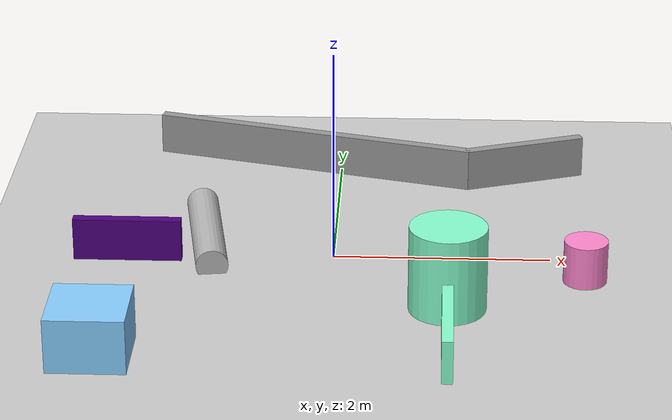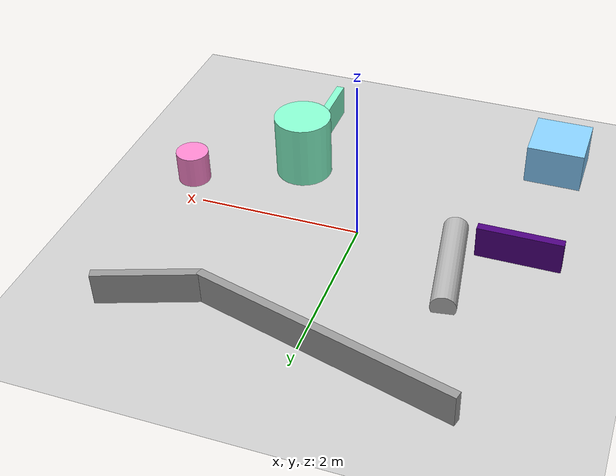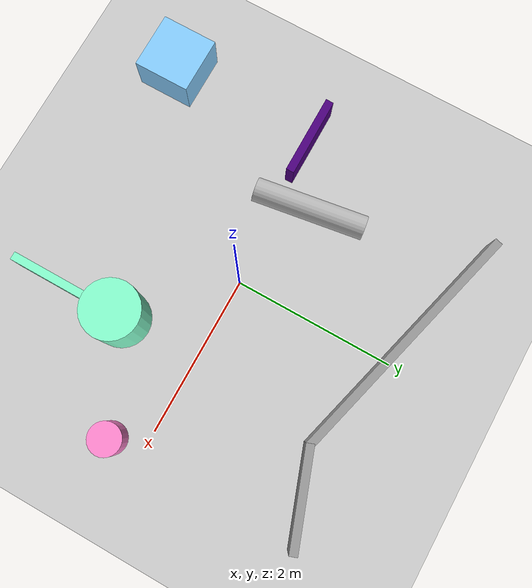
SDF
<sdf version="1.8">
 <world name="dqn">
  <plugin filename="gz-sim-physics-system" name="gz::sim::systems::Physics"/>
  <plugin filename="gz-sim-user-commands-system" name="gz::sim::systems::UserCommands"/>
  <plugin filename="gz-sim-scene-broadcaster-system" name="gz::sim::systems::SceneBroadcaster"/>
  <plugin filename="gz-sim-sensors-system" name="gz::sim::systems::Sensors">
   <render_engine>ogre2</render_engine>
  </plugin>
  <physics type="ode">
   <real_time_update_rate>1000.0</real_time_update_rate>
   <max_step_size>0.001</max_step_size>
   <real_time_factor>1</real_time_factor>
   <ode>
    <solver>
     <type>quick</type>
     <iters>150</iters>
     <precon_iters>0</precon_iters>
     <sor>1.400000</sor>
     <use_dynamic_moi_rescaling>1</use_dynamic_moi_rescaling>
    </solver>
    <constraints>
     <cfm>0.00001</cfm>
     <erp>0.2</erp>
     <contact_max_correcting_vel>2000.000000</contact_max_correcting_vel>
     <contact_surface_layer>0.01000</contact_surface_layer>
    </constraints>
   </ode>
  </physics>
  <include><uri>https://fuel.gazebosim.org/1.0/OpenRobotics/models/Ground Plane</uri></include>
  <light type="directional" name="sun">
   <cast_shadows>false</cast_shadows>
   <pose>0 0 10 0 0 0</pose>
   <diffuse>0.8 0.8 0.8 1</diffuse>
   <specular>0.2 0.2 0.2 1</specular>
   <attenuation>
    <range>1000</range>
    <constant>0.9</constant>
    <linear>0.01</linear>
    <quadratic>0.001</quadratic>
   </attenuation>
   <direction>-0.5 0.1 -0.9</direction>
  </light>
  <model name="box_obstacle">
   <static>true</static>
   <pose>-2.0 -2.0 0.25 0 0 0</pose>
   <link name="link">
    <collision name="collision"><geometry><box><size>0.7 0.7 0.5</size></box></geometry></collision>
    <visual name="visual">
     <geometry><box><size>0.7 0.7 0.5</size></box></geometry>
     <material>
      <ambient>0.53 0.81 1 1</ambient>
      <diffuse>0.53 0.81 1 1</diffuse>
      <specular>0.1 0.1 0.1 1</specular>
     </material>
    </visual>
   </link>
  </model>
  <model name="wall_obstacle1">
   <static>true</static>
   <pose>1.8 1.8 0.2 0 0 0.34</pose>
   <link name="link">
    <collision name="collision"><geometry><box><size>1.2 0.1 0.4</size></box></geometry></collision>
    <visual name="visual">
     <geometry><box><size>1.2 0.1 0.4</size></box></geometry>
     <material>
      <ambient>0.2 0.2 0.2 1</ambient>
      <diffuse>0.6 0.6 0.6 1</diffuse>
      <specular>1 1 1 1</specular>
     </material>
    </visual>
   </link>
  </model>
  <model name="wall_obstacle2">
   <static>true</static>
   <pose>-0.2809 2.0129 0.2 0 0 -0.26</pose>
   <link name="link">
    <collision name="collision"><geometry><box><size>3.2 0.1 0.4</size></box></geometry></collision>
    <visual name="visual">
     <geometry><box><size>3.2 0.1 0.4</size></box></geometry>
     <material>
      <ambient>0.2 0.2 0.2 1</ambient>
      <diffuse>0.6 0.6 0.6 1</diffuse>
      <specular>1 1 1 1</specular>
     </material>
    </visual>
   </link>
  </model>
  <model name="wall_obstacle3">
   <static>true</static>
   <pose>-1.9 -0.1 0.2 0 0 0</pose>
   <link name="link">
    <collision name="collision"><geometry><box><size>1 0.1 0.4</size></box></geometry></collision>
    <visual name="visual">
     <geometry><box><size>1 0.1 0.4</size></box></geometry>
     <material>
      <ambient>0.3 0 0.5 1</ambient>
      <diffuse>0.3 0 0.5 1</diffuse>
      <specular>0.05 0.05 0.05 1</specular>
     </material>
    </visual>
   </link>
  </model>
  <model name="wall_obstacle4">
   <static>true</static>
   <pose>1.05 -1.7 0.2 0 0 0</pose>
   <link name="link">
    <collision name="collision"><geometry><box><size>0.1 1.4 0.4</size></box></geometry></collision>
    <visual name="visual">
     <geometry><box><size>0.1 1.4 0.4</size></box></geometry>
     <material>
      <ambient>0.53 1 0.81 1</ambient>
      <diffuse>0.53 1 0.81 1</diffuse>
      <specular>0.1 0.1 0.1 1</specular>
     </material>
    </visual>
   </link>
  </model>
  <model name="cylinder_obstacle1">
   <static>true</static>
   <pose>1.05 -1 0.4 0 0 0</pose>
   <link name="link">
    <collision name="collision">
     <geometry><cylinder><radius>0.35</radius><length>0.8</length></cylinder></geometry>
    </collision>
    <visual name="visual">
     <geometry><cylinder><radius>0.35</radius><length>0.8</length></cylinder></geometry>
     <material>
      <ambient>0.53 1 0.81 1</ambient>
      <diffuse>0.53 1 0.81 1</diffuse>
      <specular>0.1 0.1 0.1 1</specular>
     </material>
    </visual>
   </link>
  </model>
  <model name="cylinder_obstacle2">
   <static>true</static>
   <pose>2.3 -0.4 0.2 0 0 0</pose>
   <link name="link">
    <collision name="collision">
     <geometry><cylinder><radius>0.2</radius><length>0.4</length></cylinder></geometry>
    </collision>
    <visual name="visual">
     <geometry><cylinder><radius>0.2</radius><length>0.4</length></cylinder></geometry>
     <material>
      <ambient>1 0.53 0.81 1</ambient>
      <diffuse>1 0.53 0.81 1</diffuse>
      <specular>0.1 0.1 0.1 1</specular>
     </material>
    </visual>
   </link>
  </model>
  <model name="cylinder_obstacle3">
   <static>true</static>
   <pose>-1.2 0.3 0.075 1.5708 0 0.15</pose>
   <link name="link">
    <collision name="collision">
     <geometry><cylinder><radius>0.15</radius><length>1.4</length></cylinder></geometry>
    </collision>
    <visual name="visual">
     <geometry><cylinder><radius>0.15</radius><length>1.4</length></cylinder></geometry>
    </visual>
   </link>
  </model>
 </world>
</sdf>
